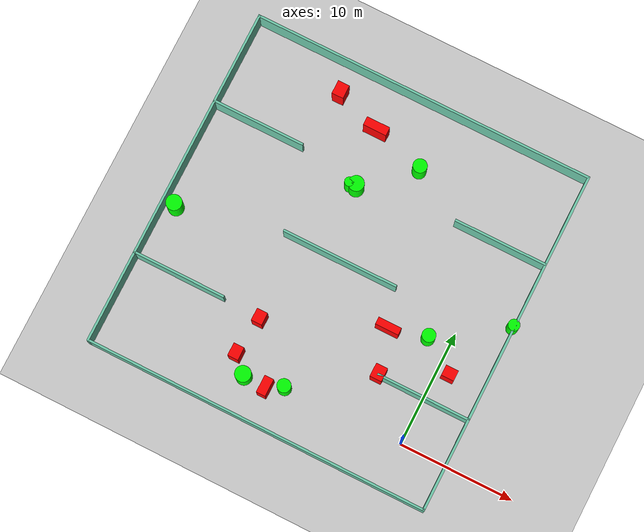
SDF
<sdf version="1.7">
 <world name="default">
  <light name="sun" type="directional">
   <pose>0 0 10 0 -0 0</pose>
   <diffuse>0.8 0.8 0.8 1</diffuse>
   <specular>0.2 0.2 0.2 1</specular>
   <attenuation>
    <range>1000</range>
    <constant>0.9</constant>
    <linear>0.01</linear>
    <quadratic>0.001</quadratic>
   </attenuation>
   <direction>-0.5 0.1 -0.9</direction>
   <spot><inner_angle>0</inner_angle><outer_angle>0</outer_angle><falloff>0</falloff></spot>
  </light>
  <model name="ground_plane">
   <static>1</static>
   <link name="link">
    <collision name="collision">
     <geometry><plane><normal>0 0 1</normal><size>100 100</size></plane></geometry>
     <surface>
      <contact><collide_bitmask>65535</collide_bitmask></contact>
      <friction><ode><mu>100</mu><mu2>50</mu2></ode></friction>
     </surface>
    </collision>
    <visual name="visual">
     <cast_shadows>0</cast_shadows>
     <geometry><plane><normal>0 0 1</normal><size>100 100</size></plane></geometry>
     <material>
      <script><uri>file://media/materials/scripts/gazebo.material</uri><name>Gazebo/Grey</name></script>
     </material>
    </visual>
   </link>
  </model>
  <gravity>0 0 -9.8</gravity>
  <magnetic_field>6e-06 2.3e-05 -4.2e-05</magnetic_field>
  <atmosphere type="adiabatic"/>
  <physics type="ode">
   <max_step_size>0.001</max_step_size>
   <real_time_factor>1</real_time_factor>
   <real_time_update_rate>1000</real_time_update_rate>
  </physics>
  <scene><ambient>0.4 0.4 0.4 1</ambient><background>0.7 0.7 0.7 1</background><shadows>1</shadows></scene>
  <spherical_coordinates>
   <surface_model>EARTH_WGS84</surface_model>
   <latitude_deg>0</latitude_deg>
   <longitude_deg>0</longitude_deg>
   <elevation>0</elevation>
   <heading_deg>0</heading_deg>
  </spherical_coordinates>
  <model name="my_base_walls">
   <link name="Wall_10">
    <collision name="Wall_10_Collision">
     <geometry><box><size>8.2 0.2 2.5</size></box></geometry>
     <pose>0 0 1.25 0 -0 0</pose>
    </collision>
    <visual name="Wall_10_Visual">
     <pose>0 0 1.25 0 -0 0</pose>
     <geometry><box><size>8.2 0.2 2.5</size></box></geometry>
     <material>
      <script><uri>file://media/materials/scripts/gazebo.material</uri><name>Gazebo/Grey</name></script>
      <ambient>0.435294 0.796078 0.67451 1</ambient>
     </material>
     <meta><layer>0</layer></meta>
    </visual>
    <pose>-11 -7 0 0 -0 0</pose>
   </link>
   <link name="Wall_12">
    <collision name="Wall_12_Collision">
     <geometry><box><size>8.2 0.2 2.5</size></box></geometry>
     <pose>0 0 1.25 0 -0 0</pose>
    </collision>
    <visual name="Wall_12_Visual">
     <pose>0 0 1.25 0 -0 0</pose>
     <geometry><box><size>8.2 0.2 2.5</size></box></geometry>
     <material>
      <script><uri>file://media/materials/scripts/gazebo.material</uri><name>Gazebo/Grey</name></script>
      <ambient>0.435294 0.796078 0.67451 1</ambient>
     </material>
     <meta><layer>0</layer></meta>
    </visual>
    <pose>-11 7 0 0 -0 0</pose>
   </link>
   <link name="Wall_14">
    <collision name="Wall_14_Collision">
     <geometry><box><size>8.2 0.2 2.5</size></box></geometry>
     <pose>0 0 1.25 0 -0 0</pose>
    </collision>
    <visual name="Wall_14_Visual">
     <pose>0 0 1.25 0 -0 0</pose>
     <geometry><box><size>8.2 0.2 2.5</size></box></geometry>
     <material>
      <script><uri>file://media/materials/scripts/gazebo.material</uri><name>Gazebo/Grey</name></script>
      <ambient>0.435294 0.796078 0.67451 1</ambient>
     </material>
     <meta><layer>0</layer></meta>
    </visual>
    <pose>11 7 0 0 -0 3.14159</pose>
   </link>
   <link name="Wall_16">
    <collision name="Wall_16_Collision">
     <geometry><box><size>10.2 0.2 2.5</size></box></geometry>
     <pose>0 0 1.25 0 -0 0</pose>
    </collision>
    <visual name="Wall_16_Visual">
     <pose>0 0 1.25 0 -0 0</pose>
     <geometry><box><size>10.2 0.2 2.5</size></box></geometry>
     <material>
      <script><uri>file://media/materials/scripts/gazebo.material</uri><name>Gazebo/Grey</name></script>
      <ambient>0.435294 0.796078 0.67451 1</ambient>
     </material>
     <meta><layer>0</layer></meta>
    </visual>
    <pose>0 0 0 0 -0 3.14159</pose>
   </link>
   <link name="Wall_2">
    <collision name="Wall_2_Collision">
     <geometry><box><size>30.2 0.2 2.5</size></box></geometry>
     <pose>0 0 1.25 0 -0 0</pose>
    </collision>
    <visual name="Wall_2_Visual">
     <pose>0 0 1.25 0 -0 0</pose>
     <geometry><box><size>30.2 0.2 2.5</size></box></geometry>
     <material>
      <script><uri>file://media/materials/scripts/gazebo.material</uri><name>Gazebo/Grey</name></script>
      <ambient>0.435294 0.796078 0.67451 1</ambient>
     </material>
     <meta><layer>0</layer></meta>
    </visual>
    <pose>0 -15 0 0 -0 3.14159</pose>
   </link>
   <link name="Wall_3">
    <collision name="Wall_3_Collision">
     <geometry><box><size>30.2 0.2 2.5</size></box></geometry>
     <pose>0 0 1.25 0 -0 0</pose>
    </collision>
    <visual name="Wall_3_Visual">
     <pose>0 0 1.25 0 -0 0</pose>
     <geometry><box><size>30.2 0.2 2.5</size></box></geometry>
     <material>
      <script><uri>file://media/materials/scripts/gazebo.material</uri><name>Gazebo/Grey</name></script>
      <ambient>0.435294 0.796078 0.67451 1</ambient>
     </material>
     <meta><layer>0</layer></meta>
    </visual>
    <pose>-15 0 0 0 -0 1.5708</pose>
   </link>
   <link name="Wall_4">
    <collision name="Wall_4_Collision">
     <geometry><box><size>30.2 0.2 2.5</size></box></geometry>
     <pose>0 0 1.25 0 -0 0</pose>
    </collision>
    <visual name="Wall_4_Visual">
     <pose>0 0 1.25 0 -0 0</pose>
     <geometry><box><size>30.2 0.2 2.5</size></box></geometry>
     <material>
      <script><uri>file://media/materials/scripts/gazebo.material</uri><name>Gazebo/Grey</name></script>
      <ambient>0.435294 0.796078 0.67451 1</ambient>
     </material>
     <meta><layer>0</layer></meta>
    </visual>
    <pose>0 15 0 0 -0 0</pose>
   </link>
   <link name="Wall_6">
    <collision name="Wall_6_Collision">
     <geometry><box><size>30.2 0.2 2.5</size></box></geometry>
     <pose>0 0 1.25 0 -0 0</pose>
    </collision>
    <visual name="Wall_6_Visual">
     <pose>0 0 1.25 0 -0 0</pose>
     <geometry><box><size>30.2 0.2 2.5</size></box></geometry>
     <material>
      <script><uri>file://media/materials/scripts/gazebo.material</uri><name>Gazebo/Grey</name></script>
      <ambient>0.435294 0.796078 0.67451 1</ambient>
     </material>
     <meta><layer>0</layer></meta>
    </visual>
    <pose>15 0 0 0 -0 1.5708</pose>
   </link>
   <link name="Wall_8">
    <collision name="Wall_8_Collision">
     <geometry><box><size>8.2 0.2 2.5</size></box></geometry>
     <pose>0 0 1.25 0 -0 0</pose>
    </collision>
    <visual name="Wall_8_Visual">
     <pose>0 0 1.25 0 -0 0</pose>
     <geometry><box><size>8.2 0.2 2.5</size></box></geometry>
     <material>
      <script><uri>file://media/materials/scripts/gazebo.material</uri><name>Gazebo/Grey</name></script>
      <ambient>0.435294 0.796078 0.67451 1</ambient>
     </material>
     <meta><layer>0</layer></meta>
    </visual>
    <pose>11 -7 0 0 -0 3.14159</pose>
   </link>
   <static>1</static>
   <pose>-11 11 0 0 -0 0</pose>
  </model>
  <model name="cylinder1">
   <static>1</static>
   <link name="link">
    <inertial>
     <mass>1</mass>
     <inertia><ixx>0.5</ixx><ixy>0</ixy><ixz>0</ixz><iyy>0.5</iyy><iyz>0</iyz><izz>1</izz></inertia>
    </inertial>
    <collision name="collision">
     <geometry><cylinder><radius>0.49585155509877055</radius><length>2.5</length></cylinder></geometry>
    </collision>
    <visual name="visual">
     <geometry><cylinder><radius>0.49585155509877055</radius><length>2.5</length></cylinder></geometry>
     <material>
      <ambient>0 1 0 1</ambient>
      <diffuse>0 1 0 1</diffuse>
      <specular>0.1 0.1 0.1 1</specular>
      <emissive>0 0 0 0</emissive>
     </material>
    </visual>
   </link>
   <pose>3.8891953310910026 12.450405835520856 1.25 0 0 0</pose>
  </model>
  <model name="cylinder2">
   <static>1</static>
   <link name="link">
    <inertial>
     <mass>1</mass>
     <inertia><ixx>0.5</ixx><ixy>0</ixy><ixz>0</ixz><iyy>0.5</iyy><iyz>0</iyz><izz>1</izz></inertia>
    </inertial>
    <collision name="collision">
     <geometry><cylinder><radius>0.3971321390818836</radius><length>2.5</length></cylinder></geometry>
    </collision>
    <visual name="visual">
     <geometry><cylinder><radius>0.3971321390818836</radius><length>2.5</length></cylinder></geometry>
     <material>
      <ambient>0 1 0 1</ambient>
      <diffuse>0 1 0 1</diffuse>
      <specular>0.1 0.1 0.1 1</specular>
      <emissive>0 0 0 0</emissive>
     </material>
    </visual>
   </link>
   <pose>-13.167777600741491 16.94587311571077 1.25 0 0 0</pose>
  </model>
  <model name="cylinder3">
   <static>1</static>
   <link name="link">
    <inertial>
     <mass>1</mass>
     <inertia><ixx>0.5</ixx><ixy>0</ixy><ixz>0</ixz><iyy>0.5</iyy><iyz>0</iyz><izz>1</izz></inertia>
    </inertial>
    <collision name="collision">
     <geometry><cylinder><radius>0.6045947255822232</radius><length>2.5</length></cylinder></geometry>
    </collision>
    <visual name="visual">
     <geometry><cylinder><radius>0.6045947255822232</radius><length>2.5</length></cylinder></geometry>
     <material>
      <ambient>0 1 0 1</ambient>
      <diffuse>0 1 0 1</diffuse>
      <specular>0.1 0.1 0.1 1</specular>
      <emissive>0 0 0 0</emissive>
     </material>
    </visual>
   </link>
   <pose>-8.624947784882552 20.700632852220455 1.25 0 0 0</pose>
  </model>
  <model name="cylinder4">
   <static>1</static>
   <link name="link">
    <inertial>
     <mass>1</mass>
     <inertia><ixx>0.5</ixx><ixy>0</ixy><ixz>0</ixz><iyy>0.5</iyy><iyz>0</iyz><izz>1</izz></inertia>
    </inertial>
    <collision name="collision">
     <geometry><cylinder><radius>0.5856856240903727</radius><length>2.5</length></cylinder></geometry>
    </collision>
    <visual name="visual">
     <geometry><cylinder><radius>0.5856856240903727</radius><length>2.5</length></cylinder></geometry>
     <material>
      <ambient>0 1 0 1</ambient>
      <diffuse>0 1 0 1</diffuse>
      <specular>0.1 0.1 0.1 1</specular>
      <emissive>0 0 0 0</emissive>
     </material>
    </visual>
   </link>
   <pose>-10.338281711722509 -0.20552060513495318 1.25 0 0 0</pose>
  </model>
  <model name="cylinder5">
   <static>1</static>
   <link name="link">
    <inertial>
     <mass>1</mass>
     <inertia><ixx>0.5</ixx><ixy>0</ixy><ixz>0</ixz><iyy>0.5</iyy><iyz>0</iyz><izz>1</izz></inertia>
    </inertial>
    <collision name="collision">
     <geometry><cylinder><radius>0.6815805848185519</radius><length>2.5</length></cylinder></geometry>
    </collision>
    <visual name="visual">
     <geometry><cylinder><radius>0.6815805848185519</radius><length>2.5</length></cylinder></geometry>
     <material>
      <ambient>0 1 0 1</ambient>
      <diffuse>0 1 0 1</diffuse>
      <specular>0.1 0.1 0.1 1</specular>
      <emissive>0 0 0 0</emissive>
     </material>
    </visual>
   </link>
   <pose>-25.042893136945832 9.017646781184029 1.25 0 0 0</pose>
  </model>
  <model name="cylinder6">
   <static>1</static>
   <link name="link">
    <inertial>
     <mass>1</mass>
     <inertia><ixx>0.5</ixx><ixy>0</ixy><ixz>0</ixz><iyy>0.5</iyy><iyz>0</iyz><izz>1</izz></inertia>
    </inertial>
    <collision name="collision">
     <geometry><cylinder><radius>0.6862114547931326</radius><length>2.5</length></cylinder></geometry>
    </collision>
    <visual name="visual">
     <geometry><cylinder><radius>0.6862114547931326</radius><length>2.5</length></cylinder></geometry>
     <material>
      <ambient>0 1 0 1</ambient>
      <diffuse>0 1 0 1</diffuse>
      <specular>0.1 0.1 0.1 1</specular>
      <emissive>0 0 0 0</emissive>
     </material>
    </visual>
   </link>
   <pose>-13.691024145148994 -0.8390388104045705 1.25 0 0 0</pose>
  </model>
  <model name="cylinder7">
   <static>1</static>
   <link name="link">
    <inertial>
     <mass>1</mass>
     <inertia><ixx>0.5</ixx><ixy>0</ixy><ixz>0</ixz><iyy>0.5</iyy><iyz>0</iyz><izz>1</izz></inertia>
    </inertial>
    <collision name="collision">
     <geometry><cylinder><radius>0.5830874355615749</radius><length>2.5</length></cylinder></geometry>
    </collision>
    <visual name="visual">
     <geometry><cylinder><radius>0.5830874355615749</radius><length>2.5</length></cylinder></geometry>
     <material>
      <ambient>0 1 0 1</ambient>
      <diffuse>0 1 0 1</diffuse>
      <specular>0.1 0.1 0.1 1</specular>
      <emissive>0 0 0 0</emissive>
     </material>
    </visual>
   </link>
   <pose>-1.825385845958042 8.634462144518597 1.25 0 0 0</pose>
  </model>
  <model name="cylinder8">
   <static>1</static>
   <link name="link">
    <inertial>
     <mass>1</mass>
     <inertia><ixx>0.5</ixx><ixy>0</ixy><ixz>0</ixz><iyy>0.5</iyy><iyz>0</iyz><izz>1</izz></inertia>
    </inertial>
    <collision name="collision">
     <geometry><cylinder><radius>0.6718114370665264</radius><length>2.5</length></cylinder></geometry>
    </collision>
    <visual name="visual">
     <geometry><cylinder><radius>0.6718114370665264</radius><length>2.5</length></cylinder></geometry>
     <material>
      <ambient>0 1 0 1</ambient>
      <diffuse>0 1 0 1</diffuse>
      <specular>0.1 0.1 0.1 1</specular>
      <emissive>0 0 0 0</emissive>
     </material>
    </visual>
   </link>
   <pose>-12.591408136679554 17.071484059560635 1.25 0 0 0</pose>
  </model>
  <model name="box1">
   <static>1</static>
   <link name="link">
    <inertial>
     <mass>1</mass>
     <inertia><ixx>0.083</ixx><ixy>0</ixy><ixz>0</ixz><iyy>0.083</iyy><iyz>0</iyz><izz>0.083</izz></inertia>
    </inertial>
    <collision name="collision">
     <geometry><box><size>0.7987282375186284 1.5160441878919781 2.5</size></box></geometry>
    </collision>
    <visual name="visual">
     <geometry><box><size>0.7987282375186284 1.5160441878919781 2.5</size></box></geometry>
     <material>
      <ambient>1 0 0 1</ambient>
      <diffuse>1 0 0 1</diffuse>
      <specular>0.1 0.1 0.1 1</specular>
      <emissive>0 0 0 0</emissive>
     </material>
    </visual>
    <sensor name="my_contact" type="contact">
     <contact><collision>box_collision</collision><topic>__default_topic__</topic></contact>
    </sensor>
   </link>
   <pose>-11.68706917269289 -0.8956294776223808 1.25 0 0 0</pose>
  </model>
  <model name="box2">
   <static>1</static>
   <link name="link">
    <inertial>
     <mass>1</mass>
     <inertia><ixx>0.083</ixx><ixy>0</ixy><ixz>0</ixz><iyy>0.083</iyy><iyz>0</iyz><izz>0.083</izz></inertia>
    </inertial>
    <collision name="collision">
     <geometry><box><size>0.9421854921208684 1.0794628656751162 2.5</size></box></geometry>
    </collision>
    <visual name="visual">
     <geometry><box><size>0.9421854921208684 1.0794628656751162 2.5</size></box></geometry>
     <material>
      <ambient>1 0 0 1</ambient>
      <diffuse>1 0 0 1</diffuse>
      <specular>0.1 0.1 0.1 1</specular>
      <emissive>0 0 0 0</emissive>
     </material>
    </visual>
    <sensor name="my_contact" type="contact">
     <contact><collision>box_collision</collision><topic>__default_topic__</topic></contact>
    </sensor>
   </link>
   <pose>-14.618987822425286 3.846081998048202 1.25 0 0 0</pose>
  </model>
  <model name="box3">
   <static>1</static>
   <link name="link">
    <inertial>
     <mass>1</mass>
     <inertia><ixx>0.083</ixx><ixy>0</ixy><ixz>0</ixz><iyy>0.083</iyy><iyz>0</iyz><izz>0.083</izz></inertia>
    </inertial>
    <collision name="collision">
     <geometry><box><size>2.058673131063527 0.7519044499713381 2.5</size></box></geometry>
    </collision>
    <visual name="visual">
     <geometry><box><size>2.058673131063527 0.7519044499713381 2.5</size></box></geometry>
     <material>
      <ambient>1 0 0 1</ambient>
      <diffuse>1 0 0 1</diffuse>
      <specular>0.1 0.1 0.1 1</specular>
      <emissive>0 0 0 0</emissive>
     </material>
    </visual>
    <sensor name="my_contact" type="contact">
     <contact><collision>box_collision</collision><topic>__default_topic__</topic></contact>
    </sensor>
   </link>
   <pose>-13.262267663529347 22.055576853022654 1.25 0 0 0</pose>
  </model>
  <model name="box4">
   <static>1</static>
   <link name="link">
    <inertial>
     <mass>1</mass>
     <inertia><ixx>0.083</ixx><ixy>0</ixy><ixz>0</ixz><iyy>0.083</iyy><iyz>0</iyz><izz>0.083</izz></inertia>
    </inertial>
    <collision name="collision">
     <geometry><box><size>2.0511364389615556 0.6265388843440196 2.5</size></box></geometry>
    </collision>
    <visual name="visual">
     <geometry><box><size>2.0511364389615556 0.6265388843440196 2.5</size></box></geometry>
     <material>
      <ambient>1 0 0 1</ambient>
      <diffuse>1 0 0 1</diffuse>
      <specular>0.1 0.1 0.1 1</specular>
      <emissive>0 0 0 0</emissive>
     </material>
    </visual>
    <sensor name="my_contact" type="contact">
     <contact><collision>box_collision</collision><topic>__default_topic__</topic></contact>
    </sensor>
   </link>
   <pose>-5.050348693354405 7.842830139441915 1.25 0 0 0</pose>
  </model>
  <model name="box5">
   <static>1</static>
   <link name="link">
    <inertial>
     <mass>1</mass>
     <inertia><ixx>0.083</ixx><ixy>0</ixy><ixz>0</ixz><iyy>0.083</iyy><iyz>0</iyz><izz>0.083</izz></inertia>
    </inertial>
    <collision name="collision">
     <geometry><box><size>0.9240986010273599 1.119927624126672 2.5</size></box></geometry>
    </collision>
    <visual name="visual">
     <geometry><box><size>0.9240986010273599 1.119927624126672 2.5</size></box></geometry>
     <material>
      <ambient>1 0 0 1</ambient>
      <diffuse>1 0 0 1</diffuse>
      <specular>0.1 0.1 0.1 1</specular>
      <emissive>0 0 0 0</emissive>
     </material>
    </visual>
    <sensor name="my_contact" type="contact">
     <contact><collision>box_collision</collision><topic>__default_topic__</topic></contact>
    </sensor>
   </link>
   <pose>-15.012922770246153 0.500978185880105 1.25 0 0 0</pose>
  </model>
  <model name="box6">
   <static>1</static>
   <link name="link">
    <inertial>
     <mass>1</mass>
     <inertia><ixx>0.083</ixx><ixy>0</ixy><ixz>0</ixz><iyy>0.083</iyy><iyz>0</iyz><izz>0.083</izz></inertia>
    </inertial>
    <collision name="collision">
     <geometry><box><size>1.1020720944523292 0.9239400340765676 2.5</size></box></geometry>
    </collision>
    <visual name="visual">
     <geometry><box><size>1.1020720944523292 0.9239400340765676 2.5</size></box></geometry>
     <material>
      <ambient>1 0 0 1</ambient>
      <diffuse>1 0 0 1</diffuse>
      <specular>0.1 0.1 0.1 1</specular>
      <emissive>0 0 0 0</emissive>
     </material>
    </visual>
    <sensor name="my_contact" type="contact">
     <contact><collision>box_collision</collision><topic>__default_topic__</topic></contact>
    </sensor>
   </link>
   <pose>1.019463350996304 6.677456700700093 1.25 0 0 0</pose>
  </model>
  <model name="box7">
   <static>1</static>
   <link name="link">
    <inertial>
     <mass>1</mass>
     <inertia><ixx>0.083</ixx><ixy>0</ixy><ixz>0</ixz><iyy>0.083</iyy><iyz>0</iyz><izz>0.083</izz></inertia>
    </inertial>
    <collision name="collision">
     <geometry><box><size>1.0153000826916518 1.1849874036973977 2.5</size></box></geometry>
    </collision>
    <visual name="visual">
     <geometry><box><size>1.0153000826916518 1.1849874036973977 2.5</size></box></geometry>
     <material>
      <ambient>1 0 0 1</ambient>
      <diffuse>1 0 0 1</diffuse>
      <specular>0.1 0.1 0.1 1</specular>
      <emissive>0 0 0 0</emissive>
     </material>
    </visual>
    <sensor name="my_contact" type="contact">
     <contact><collision>box_collision</collision><topic>__default_topic__</topic></contact>
    </sensor>
   </link>
   <pose>-17.250222788996293 23.47535149229668 1.25 0 0 0</pose>
  </model>
  <model name="box8">
   <static>1</static>
   <link name="link">
    <inertial>
     <mass>1</mass>
     <inertia><ixx>0.083</ixx><ixy>0</ixy><ixz>0</ixz><iyy>0.083</iyy><iyz>0</iyz><izz>0.083</izz></inertia>
    </inertial>
    <collision name="collision">
     <geometry><box><size>1.019284450716475 1.1860022130726176 2.5</size></box></geometry>
    </collision>
    <visual name="visual">
     <geometry><box><size>1.019284450716475 1.1860022130726176 2.5</size></box></geometry>
     <material>
      <ambient>1 0 0 1</ambient>
      <diffuse>1 0 0 1</diffuse>
      <specular>0.1 0.1 0.1 1</specular>
      <emissive>0 0 0 0</emissive>
     </material>
    </visual>
    <sensor name="my_contact" type="contact">
     <contact><collision>box_collision</collision><topic>__default_topic__</topic></contact>
    </sensor>
   </link>
   <pose>-4.066464550920173 4.16842750953262 1.25 0 0 0</pose>
  </model>
 </world>
</sdf>
